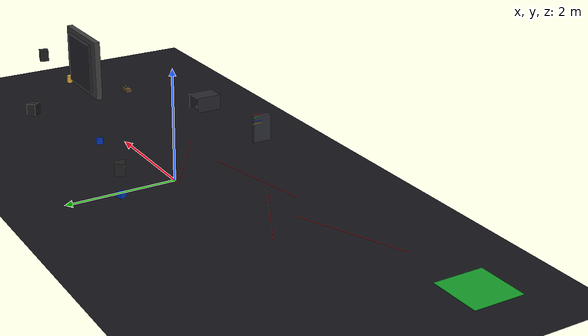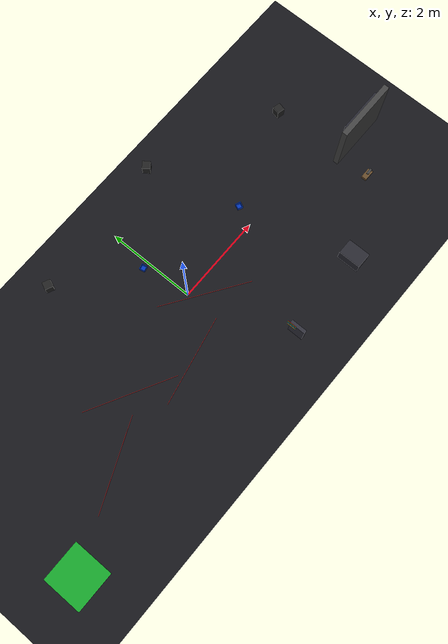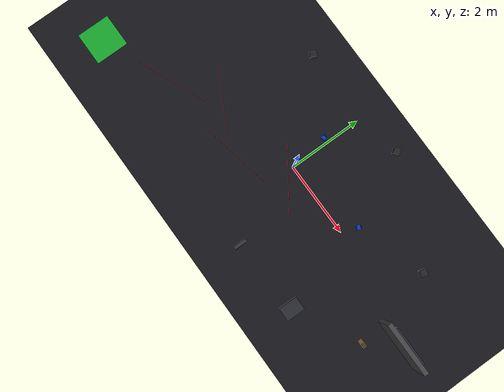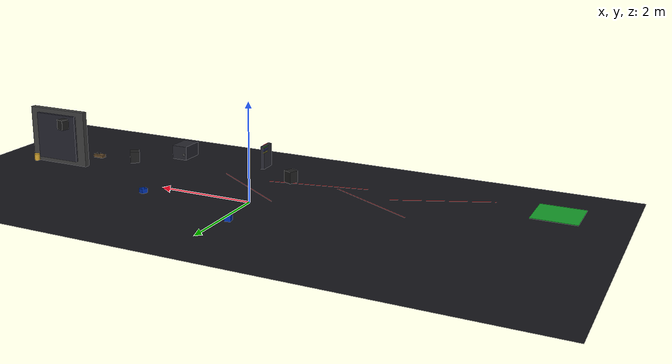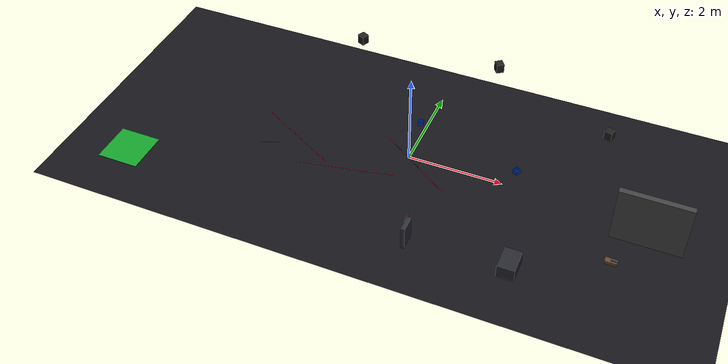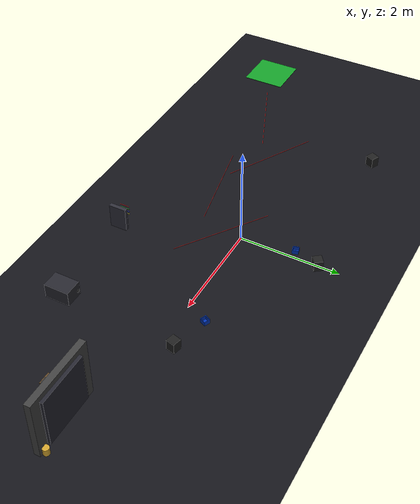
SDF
<sdf version='1.9'>
  <world name='heist_night'>
    <physics name='1ms' type='ignored'>
      <max_step_size>0.001</max_step_size>
      <real_time_factor>1</real_time_factor>
      <real_time_update_rate>1000</real_time_update_rate>
    </physics>

    <plugin name='gz::sim::systems::Physics' filename='ignition-gazebo-physics-system'/>
    <plugin name='gz::sim::systems::UserCommands' filename='ignition-gazebo-user-commands-system'/>
    <plugin name='gz::sim::systems::SceneBroadcaster' filename='ignition-gazebo-scene-broadcaster-system'/>
    <plugin name='gz::sim::systems::Contact' filename='ignition-gazebo-contact-system'/>
    <plugin name='gz::sim::systems::Sensors' filename='ignition-gazebo-sensors-system'>
      <render_engine>ogre2</render_engine>
    </plugin>

    <gravity>0 0 -9.8</gravity>
    <scene>
      <ambient>0.03 0.03 0.05 1</ambient>
      <background>0.01 0.01 0.03 1</background>
      <shadows>true</shadows>
    </scene>

    <model name='ground_plane'>
      <static>true</static>
      <link name='link'>
        <collision name='collision'>
          <geometry>
            <plane>
              <normal>0 0 1</normal>
              <size>120 120</size>
            </plane>
          </geometry>
          <surface>
            <friction>
              <ode>
                <mu>1.2</mu>
                <mu2>1.2</mu2>
              </ode>
            </friction>
          </surface>
        </collision>
        <visual name='visual'>
          <geometry>
            <plane>
              <normal>0 0 1</normal>
              <size>120 120</size>
            </plane>
          </geometry>
          <material>
            <ambient>0.06 0.06 0.08 1</ambient>
            <diffuse>0.08 0.08 0.10 1</diffuse>
            <specular>0.01 0.01 0.01 1</specular>
          </material>
        </visual>
      </link>
    </model>

    <light name='moon_fill' type='directional'>
      <pose>0 0 30 0 0 0</pose>
      <cast_shadows>true</cast_shadows>
      <intensity>0.20</intensity>
      <direction>-0.3 0.2 -1.0</direction>
      <diffuse>0.25 0.27 0.35 1</diffuse>
      <specular>0.02 0.02 0.03 1</specular>
      <attenuation>
        <range>1000</range>
        <linear>0.01</linear>
        <constant>0.9</constant>
        <quadratic>0.001</quadratic>
      </attenuation>
    </light>

    <!-- Start / extraction -->
    <include>
      <uri>model://ExtractionZone</uri>
      <name>ExtractionZone</name>
      <pose>-5.5 -2.0 0.0 0 0 0</pose>
    </include>

    <!-- Tripwire corridor -->
    <include>
      <uri>model://TripwireBeam</uri>
      <name>Tripwire_1</name>
      <pose>-3.5 -1.2 0.20 0 0 0.4</pose>
    </include>
    <include>
      <uri>model://TripwireBeam</uri>
      <name>Tripwire_2</name>
      <pose>-2.3 -0.5 0.20 0 0 -0.5</pose>
    </include>
    <include>
      <uri>model://TripwireBeam</uri>
      <name>Tripwire_3</name>
      <pose>-1.0 -1.0 0.20 0 0 0.2</pose>
    </include>
    <include>
      <uri>model://TripwireBeam</uri>
      <name>Tripwire_4</name>
      <pose>0.2 -0.3 0.20 0 0 -0.6</pose>
    </include>

    <!-- Camera network -->
    <include>
      <uri>model://SecurityCameraUnit</uri>
      <name>Camera_A</name>
      <pose>-1.8 1.8 1.3 0 0 -2.0</pose>
    </include>
    <include>
      <uri>model://SecurityCameraUnit</uri>
      <name>Camera_B</name>
      <pose>1.2 2.0 1.3 0 0 -2.5</pose>
    </include>
    <include>
      <uri>model://SecurityCameraUnit</uri>
      <name>Camera_C</name>
      <pose>3.8 0.8 1.3 0 0 2.9</pose>
    </include>

    <!-- Camera disable station -->
    <include>
      <uri>model://CameraControlPanel</uri>
      <name>CameraControlPanel</name>
      <pose>0.8 -2.2 0.25 0 0 1.5708</pose>
    </include>

    <!-- Security console for morse password and terminal -->
    <include>
      <uri>model://SecurityConsole</uri>
      <name>SecurityConsole</name>
      <pose>2.8 -2.1 0.15 0 0 1.5708</pose>
    </include>

    <!-- Vault sector -->
    <include>
      <uri>model://VaultDoor</uri>
      <name>VaultDoor</name>
      <pose>5.0 -0.5 0.60 0 0 1.5708</pose>
    </include>

    <include>
      <uri>model://MorseKey</uri>
      <name>MorseKey</name>
      <pose>4.5 -1.2 0.03 0 0 0</pose>
    </include>

    <include>
      <uri>model://Artifact</uri>
      <name>Artifact</name>
      <pose>5.6 -0.4 0.07 0 0 0</pose>
    </include>

    <!-- Navigation clutter -->
    <include>
      <uri>model://TransportBox</uri>
      <name>ObstacleBox_1</name>
      <pose>-0.2 1.0 0.0 0 0 0.2</pose>
    </include>
    <include>
      <uri>model://TransportBox</uri>
      <name>ObstacleBox_2</name>
      <pose>2.1 0.4 0.0 0 0 -0.4</pose>
    </include>
  </world>
</sdf>

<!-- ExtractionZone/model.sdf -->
<sdf version="1.9">
  <model name="extraction_zone">
    <static>true</static>
    <link name="link">
      <collision name="collision">
        <geometry>
          <box>
            <size>0.90 0.90 0.02</size>
          </box>
        </geometry>
      </collision>
      <visual name="visual">
        <geometry>
          <box>
            <size>0.90 0.90 0.01</size>
          </box>
        </geometry>
        <material>
          <ambient>0.05 0.45 0.12 1</ambient>
          <diffuse>0.08 0.62 0.16 1</diffuse>
          <emissive>0.03 0.22 0.06 1</emissive>
        </material>
      </visual>
    </link>
  </model>
</sdf>

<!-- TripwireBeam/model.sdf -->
<sdf version="1.9">
  <model name="tripwire_beam">
    <static>true</static>
    <link name="link">
      <collision name="collision">
        <geometry>
          <box>
            <size>2.0 0.01 0.01</size>
          </box>
        </geometry>
      </collision>
      <visual name="visual">
        <geometry>
          <box>
            <size>2.0 0.006 0.006</size>
          </box>
        </geometry>
        <material>
          <ambient>0.95 0.1 0.1 1</ambient>
          <diffuse>0.95 0.1 0.1 1</diffuse>
          <specular>0.25 0.05 0.05 1</specular>
          <emissive>0.35 0.02 0.02 1</emissive>
        </material>
      </visual>
      <sensor name="tripwire_contact" type="contact">
        <contact>
          <collision>collision</collision>
        </contact>
        <always_on>true</always_on>
        <update_rate>30</update_rate>
      </sensor>
    </link>
    <plugin filename="ignition-gazebo-contact-system" name="gz::sim::systems::Contact"/>
  </model>
</sdf>

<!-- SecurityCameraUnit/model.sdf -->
<sdf version="1.9">
  <model name="security_camera_unit">
    <static>true</static>
    <link name="base_link">
      <collision name="base_collision">
        <geometry>
          <box>
            <size>0.16 0.16 0.20</size>
          </box>
        </geometry>
      </collision>
      <visual name="base_visual">
        <geometry>
          <box>
            <size>0.16 0.16 0.20</size>
          </box>
        </geometry>
        <material>
          <ambient>0.08 0.08 0.08 1</ambient>
          <diffuse>0.12 0.12 0.12 1</diffuse>
          <specular>0.25 0.25 0.25 1</specular>
        </material>
      </visual>

      <light name="camera_spotlight" type="spot">
        <pose>0.10 0 0.10 0 0 0</pose>
        <cast_shadows>true</cast_shadows>
        <diffuse>0.95 0.95 0.90 1</diffuse>
        <specular>0.10 0.10 0.10 1</specular>
        <attenuation>
          <range>8.0</range>
          <constant>0.9</constant>
          <linear>0.05</linear>
          <quadratic>0.01</quadratic>
        </attenuation>
        <direction>1 0 -0.2</direction>
        <spot>
          <inner_angle>0.25</inner_angle>
          <outer_angle>0.50</outer_angle>
          <falloff>0.8</falloff>
        </spot>
      </light>
    </link>
  </model>
</sdf>

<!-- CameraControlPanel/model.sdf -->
<sdf version="1.9">
  <model name="camera_control_panel">
    <static>true</static>

    <link name="panel_link">
      <collision name="panel_collision">
        <geometry>
          <box>
            <size>0.35 0.08 0.50</size>
          </box>
        </geometry>
      </collision>
      <visual name="panel_visual">
        <geometry>
          <box>
            <size>0.35 0.08 0.50</size>
          </box>
        </geometry>
        <material>
          <ambient>0.15 0.15 0.18 1</ambient>
          <diffuse>0.18 0.18 0.22 1</diffuse>
          <specular>0.20 0.20 0.24 1</specular>
        </material>
      </visual>

      <visual name="wire_red">
        <pose>0.12 0.05 0.30 0 1.5708 0</pose>
        <geometry>
          <cylinder>
            <radius>0.005</radius>
            <length>0.20</length>
          </cylinder>
        </geometry>
        <material>
          <ambient>0.85 0.10 0.10 1</ambient>
          <diffuse>0.90 0.12 0.12 1</diffuse>
        </material>
      </visual>

      <visual name="wire_green">
        <pose>0.12 0.05 0.24 0 1.5708 0</pose>
        <geometry>
          <cylinder>
            <radius>0.005</radius>
            <length>0.20</length>
          </cylinder>
        </geometry>
        <material>
          <ambient>0.12 0.80 0.12 1</ambient>
          <diffuse>0.15 0.90 0.15 1</diffuse>
        </material>
      </visual>

      <visual name="wire_blue">
        <pose>0.12 0.05 0.18 0 1.5708 0</pose>
        <geometry>
          <cylinder>
            <radius>0.005</radius>
            <length>0.20</length>
          </cylinder>
        </geometry>
        <material>
          <ambient>0.10 0.20 0.80 1</ambient>
          <diffuse>0.12 0.24 0.92 1</diffuse>
        </material>
      </visual>

      <visual name="wire_yellow">
        <pose>0.12 0.05 0.12 0 1.5708 0</pose>
        <geometry>
          <cylinder>
            <radius>0.005</radius>
            <length>0.20</length>
          </cylinder>
        </geometry>
        <material>
          <ambient>0.80 0.75 0.10 1</ambient>
          <diffuse>0.92 0.86 0.12 1</diffuse>
        </material>
      </visual>
    </link>
  </model>
</sdf>

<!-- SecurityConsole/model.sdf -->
<sdf version="1.9">
  <model name="security_console">
    <static>true</static>
    <link name="link">
      <collision name="collision">
        <geometry>
          <box>
            <size>0.50 0.35 0.30</size>
          </box>
        </geometry>
      </collision>
      <visual name="base_visual">
        <geometry>
          <box>
            <size>0.50 0.35 0.30</size>
          </box>
        </geometry>
        <material>
          <ambient>0.12 0.12 0.14 1</ambient>
          <diffuse>0.15 0.15 0.18 1</diffuse>
          <specular>0.2 0.2 0.24 1</specular>
        </material>
      </visual>

      <visual name="led_status">
        <pose>0.22 0.0 0.10 0 0 0</pose>
        <geometry>
          <sphere>
            <radius>0.02</radius>
          </sphere>
        </geometry>
        <material>
          <ambient>0.05 0.7 0.05 1</ambient>
          <diffuse>0.1 0.9 0.1 1</diffuse>
          <emissive>0.05 0.8 0.05 1</emissive>
        </material>
      </visual>

      <visual name="xlr_connector">
        <pose>0.24 0.12 -0.03 0 1.5708 0</pose>
        <geometry>
          <cylinder>
            <radius>0.03</radius>
            <length>0.04</length>
          </cylinder>
        </geometry>
        <material>
          <ambient>0.2 0.2 0.2 1</ambient>
          <diffuse>0.28 0.28 0.28 1</diffuse>
        </material>
      </visual>
    </link>
  </model>
</sdf>

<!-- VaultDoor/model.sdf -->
<sdf version="1.9">
  <model name="vault_door">
    <static>true</static>
    <link name="frame_link">
      <collision name="frame_collision">
        <geometry>
          <box>
            <size>0.12 1.40 1.20</size>
          </box>
        </geometry>
      </collision>
      <visual name="frame_visual">
        <geometry>
          <box>
            <size>0.12 1.40 1.20</size>
          </box>
        </geometry>
        <material>
          <ambient>0.18 0.18 0.18 1</ambient>
          <diffuse>0.25 0.25 0.25 1</diffuse>
          <specular>0.35 0.35 0.35 1</specular>
        </material>
      </visual>

      <collision name="door_collision">
        <pose>0.09 0 0 0 0 0</pose>
        <geometry>
          <box>
            <size>0.06 1.00 1.00</size>
          </box>
        </geometry>
      </collision>
      <visual name="door_visual">
        <pose>0.09 0 0 0 0 0</pose>
        <geometry>
          <box>
            <size>0.06 1.00 1.00</size>
          </box>
        </geometry>
        <material>
          <ambient>0.10 0.10 0.12 1</ambient>
          <diffuse>0.14 0.14 0.18 1</diffuse>
          <specular>0.25 0.25 0.28 1</specular>
        </material>
      </visual>
    </link>
  </model>
</sdf>

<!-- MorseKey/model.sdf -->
<sdf version="1.9">
  <model name="morse_key">
    <static>true</static>
    <link name="link">
      <collision name="base_collision">
        <geometry>
          <box>
            <size>0.24 0.12 0.06</size>
          </box>
        </geometry>
      </collision>
      <visual name="base_visual">
        <geometry>
          <box>
            <size>0.24 0.12 0.06</size>
          </box>
        </geometry>
        <material>
          <ambient>0.3 0.22 0.12 1</ambient>
          <diffuse>0.38 0.28 0.16 1</diffuse>
        </material>
      </visual>

      <collision name="key_collision">
        <pose>0.06 0 0.05 0 0 0</pose>
        <geometry>
          <box>
            <size>0.14 0.05 0.02</size>
          </box>
        </geometry>
      </collision>
      <visual name="key_visual">
        <pose>0.06 0 0.05 0 0 0</pose>
        <geometry>
          <box>
            <size>0.14 0.05 0.02</size>
          </box>
        </geometry>
        <material>
          <ambient>0.18 0.18 0.18 1</ambient>
          <diffuse>0.24 0.24 0.24 1</diffuse>
        </material>
      </visual>

      <sensor name="morse_key_contact" type="contact">
        <contact>
          <collision>key_collision</collision>
        </contact>
        <always_on>true</always_on>
        <update_rate>30</update_rate>
      </sensor>
    </link>
    <plugin filename="ignition-gazebo-contact-system" name="gz::sim::systems::Contact"/>
  </model>
</sdf>

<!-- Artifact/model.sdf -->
<sdf version="1.9">
  <model name="artifact">
    <static>false</static>
    <link name="link">
      <inertial>
        <mass>0.3</mass>
        <inertia>
          <ixx>0.0006</ixx>
          <ixy>0</ixy>
          <ixz>0</ixz>
          <iyy>0.0006</iyy>
          <iyz>0</iyz>
          <izz>0.0006</izz>
        </inertia>
      </inertial>
      <collision name="collision">
        <geometry>
          <cylinder>
            <radius>0.06</radius>
            <length>0.14</length>
          </cylinder>
        </geometry>
      </collision>
      <visual name="visual">
        <geometry>
          <cylinder>
            <radius>0.06</radius>
            <length>0.14</length>
          </cylinder>
        </geometry>
        <material>
          <ambient>0.65 0.50 0.14 1</ambient>
          <diffuse>0.82 0.64 0.18 1</diffuse>
          <specular>0.95 0.80 0.30 1</specular>
          <emissive>0.08 0.06 0.01 1</emissive>
        </material>
      </visual>
    </link>
  </model>
</sdf>

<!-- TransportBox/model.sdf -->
<sdf version="1.9">
  <model name="transport_box">
    <static>false</static>
    <link name="link">
      <inertial>
        <mass>0.4</mass>
        <pose>0.06096 0.06096 0.04572 0 0 0</pose>
        <inertia>
          <ixx>7.68e-04</ixx>
          <ixy>0</ixy>
          <ixz>0</ixz>
          <iyy>7.68e-04</iyy>
          <iyz>0</iyz>
          <izz>9.6e-04</izz>
        </inertia>
      </inertial>
      <collision name="collision">
        <pose>0 0 0.0 0 0 0</pose>
        <geometry>
          <mesh>
            <uri>meshes/TransportBox.stl</uri>
            <scale>0.4 0.4 0.4</scale>
          </mesh>
        </geometry>
      </collision>
      <visual name="visual">
        <geometry>
          <mesh>
            <uri>meshes/TransportBox.stl</uri>
            <scale>0.4 0.4 0.4</scale>
          </mesh>
        </geometry>
        <material>
          <ambient>0.0 0.1 0.4 1</ambient>
          <diffuse>0.0 0.2 0.7 1</diffuse>
          <specular>0.3 0.4 0.9 1</specular>
        </material>
      </visual>
      <sensor name="transport_box_contact" type="contact">
        <contact>
          <collision>collision</collision>
        </contact>
        <always_on>true</always_on>
        <update_rate>30</update_rate>
      </sensor>
    </link>
    <plugin filename="ignition-gazebo-contact-system" name="gz::sim::systems::Contact"/>
  </model>
</sdf>
